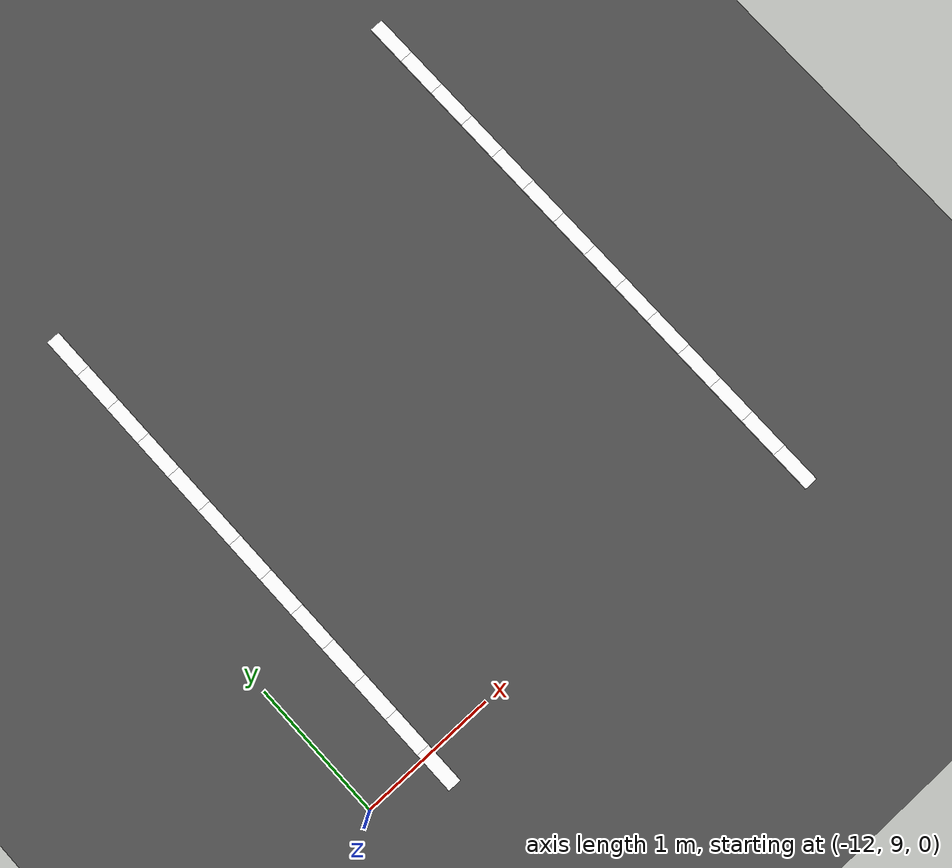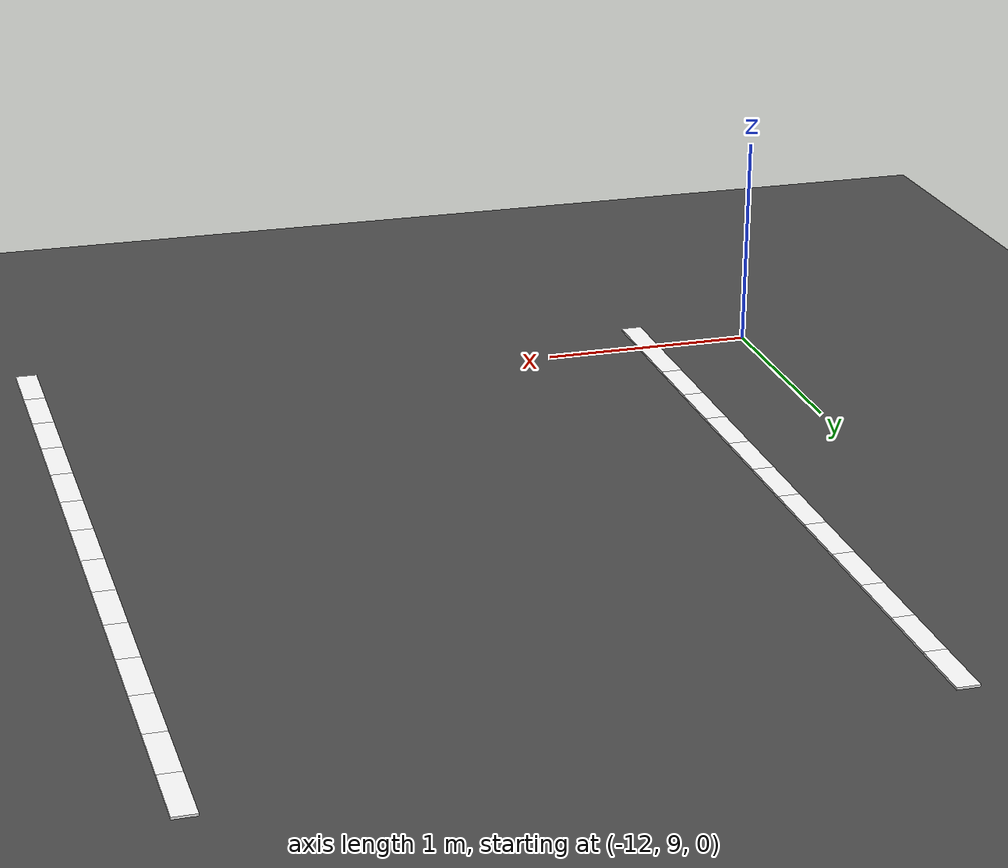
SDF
<sdf version="1.8">
 <world name="igvc_autonav">
  <model name="ground_plane">
   <static>true</static>
   <link name="link">
    <collision name="collision">
     <geometry><plane><normal>0 0 1</normal><size>60 60</size></plane></geometry>
     <surface><friction><ode><mu>0.8</mu><mu2>0.8</mu2></ode></friction></surface>
    </collision>
    <visual name="visual">
     <geometry><plane><normal>0 0 1</normal><size>60 60</size></plane></geometry>
     <material>
      <ambient>0.25 0.25 0.25 1</ambient>
      <diffuse>0.3 0.3 0.3 1</diffuse>
      <specular>0.1 0.1 0.1 1</specular>
     </material>
    </visual>
   </link>
  </model>
  <model name="lane_inner_151">
   <static>true</static>
   <pose>-8.5000 12.6500 0.01 0 0 -1.5708</pose>
   <link name="link">
    <visual name="visual">
     <geometry><box><size>0.3 0.1 0.01</size></box></geometry>
     <material><ambient>1 1 1 1</ambient><diffuse>1 1 1 1</diffuse><emissive>1 1 1 1</emissive></material>
    </visual>
   </link>
  </model>
  <model name="lane_inner_152">
   <static>true</static>
   <pose>-8.5000 12.3500 0.01 0 0 -1.5708</pose>
   <link name="link">
    <visual name="visual">
     <geometry><box><size>0.3 0.1 0.01</size></box></geometry>
     <material><ambient>1 1 1 1</ambient><diffuse>1 1 1 1</diffuse><emissive>1 1 1 1</emissive></material>
    </visual>
   </link>
  </model>
  <model name="lane_inner_153">
   <static>true</static>
   <pose>-8.5000 12.0500 0.01 0 0 -1.5708</pose>
   <link name="link">
    <visual name="visual">
     <geometry><box><size>0.3 0.1 0.01</size></box></geometry>
     <material><ambient>1 1 1 1</ambient><diffuse>1 1 1 1</diffuse><emissive>1 1 1 1</emissive></material>
    </visual>
   </link>
  </model>
  <model name="lane_inner_154">
   <static>true</static>
   <pose>-8.5000 11.7500 0.01 0 0 -1.5708</pose>
   <link name="link">
    <visual name="visual">
     <geometry><box><size>0.3 0.1 0.01</size></box></geometry>
     <material><ambient>1 1 1 1</ambient><diffuse>1 1 1 1</diffuse><emissive>1 1 1 1</emissive></material>
    </visual>
   </link>
  </model>
  <model name="lane_inner_155">
   <static>true</static>
   <pose>-8.5000 11.4500 0.01 0 0 -1.5708</pose>
   <link name="link">
    <visual name="visual">
     <geometry><box><size>0.3 0.1 0.01</size></box></geometry>
     <material><ambient>1 1 1 1</ambient><diffuse>1 1 1 1</diffuse><emissive>1 1 1 1</emissive></material>
    </visual>
   </link>
  </model>
  <model name="lane_inner_156">
   <static>true</static>
   <pose>-8.5000 11.1500 0.01 0 0 -1.5708</pose>
   <link name="link">
    <visual name="visual">
     <geometry><box><size>0.3 0.1 0.01</size></box></geometry>
     <material><ambient>1 1 1 1</ambient><diffuse>1 1 1 1</diffuse><emissive>1 1 1 1</emissive></material>
    </visual>
   </link>
  </model>
  <model name="lane_inner_157">
   <static>true</static>
   <pose>-8.5000 10.8500 0.01 0 0 -1.5708</pose>
   <link name="link">
    <visual name="visual">
     <geometry><box><size>0.3 0.1 0.01</size></box></geometry>
     <material><ambient>1 1 1 1</ambient><diffuse>1 1 1 1</diffuse><emissive>1 1 1 1</emissive></material>
    </visual>
   </link>
  </model>
  <model name="lane_inner_158">
   <static>true</static>
   <pose>-8.5000 10.5500 0.01 0 0 -1.5708</pose>
   <link name="link">
    <visual name="visual">
     <geometry><box><size>0.3 0.1 0.01</size></box></geometry>
     <material><ambient>1 1 1 1</ambient><diffuse>1 1 1 1</diffuse><emissive>1 1 1 1</emissive></material>
    </visual>
   </link>
  </model>
  <model name="lane_inner_159">
   <static>true</static>
   <pose>-8.5000 10.2500 0.01 0 0 -1.5708</pose>
   <link name="link">
    <visual name="visual">
     <geometry><box><size>0.3 0.1 0.01</size></box></geometry>
     <material><ambient>1 1 1 1</ambient><diffuse>1 1 1 1</diffuse><emissive>1 1 1 1</emissive></material>
    </visual>
   </link>
  </model>
  <model name="lane_inner_160">
   <static>true</static>
   <pose>-8.5000 9.9500 0.01 0 0 -1.5708</pose>
   <link name="link">
    <visual name="visual">
     <geometry><box><size>0.3 0.1 0.01</size></box></geometry>
     <material><ambient>1 1 1 1</ambient><diffuse>1 1 1 1</diffuse><emissive>1 1 1 1</emissive></material>
    </visual>
   </link>
  </model>
  <model name="lane_inner_161">
   <static>true</static>
   <pose>-8.5000 9.6500 0.01 0 0 -1.5708</pose>
   <link name="link">
    <visual name="visual">
     <geometry><box><size>0.3 0.1 0.01</size></box></geometry>
     <material><ambient>1 1 1 1</ambient><diffuse>1 1 1 1</diffuse><emissive>1 1 1 1</emissive></material>
    </visual>
   </link>
  </model>
  <model name="lane_inner_162">
   <static>true</static>
   <pose>-8.5000 9.3500 0.01 0 0 -1.5708</pose>
   <link name="link">
    <visual name="visual">
     <geometry><box><size>0.3 0.1 0.01</size></box></geometry>
     <material><ambient>1 1 1 1</ambient><diffuse>1 1 1 1</diffuse><emissive>1 1 1 1</emissive></material>
    </visual>
   </link>
  </model>
  <model name="lane_inner_163">
   <static>true</static>
   <pose>-8.5000 9.0500 0.01 0 0 -1.5708</pose>
   <link name="link">
    <visual name="visual">
     <geometry><box><size>0.3 0.1 0.01</size></box></geometry>
     <material><ambient>1 1 1 1</ambient><diffuse>1 1 1 1</diffuse><emissive>1 1 1 1</emissive></material>
    </visual>
   </link>
  </model>
  <model name="lane_inner_164">
   <static>true</static>
   <pose>-8.5000 8.7500 0.01 0 0 -1.5708</pose>
   <link name="link">
    <visual name="visual">
     <geometry><box><size>0.3 0.1 0.01</size></box></geometry>
     <material><ambient>1 1 1 1</ambient><diffuse>1 1 1 1</diffuse><emissive>1 1 1 1</emissive></material>
    </visual>
   </link>
  </model>
  <model name="lane_outer_184">
   <static>true</static>
   <pose>-11.5000 12.5000 0.01 0 0 -1.5708</pose>
   <link name="link">
    <visual name="visual">
     <geometry><box><size>0.3 0.1 0.01</size></box></geometry>
     <material><ambient>1 1 1 1</ambient><diffuse>1 1 1 1</diffuse><emissive>1 1 1 1</emissive></material>
    </visual>
   </link>
  </model>
  <model name="lane_outer_185">
   <static>true</static>
   <pose>-11.5000 12.2000 0.01 0 0 -1.5708</pose>
   <link name="link">
    <visual name="visual">
     <geometry><box><size>0.3 0.1 0.01</size></box></geometry>
     <material><ambient>1 1 1 1</ambient><diffuse>1 1 1 1</diffuse><emissive>1 1 1 1</emissive></material>
    </visual>
   </link>
  </model>
  <model name="lane_outer_186">
   <static>true</static>
   <pose>-11.5000 11.9000 0.01 0 0 -1.5708</pose>
   <link name="link">
    <visual name="visual">
     <geometry><box><size>0.3 0.1 0.01</size></box></geometry>
     <material><ambient>1 1 1 1</ambient><diffuse>1 1 1 1</diffuse><emissive>1 1 1 1</emissive></material>
    </visual>
   </link>
  </model>
  <model name="lane_outer_187">
   <static>true</static>
   <pose>-11.5000 11.6000 0.01 0 0 -1.5708</pose>
   <link name="link">
    <visual name="visual">
     <geometry><box><size>0.3 0.1 0.01</size></box></geometry>
     <material><ambient>1 1 1 1</ambient><diffuse>1 1 1 1</diffuse><emissive>1 1 1 1</emissive></material>
    </visual>
   </link>
  </model>
  <model name="lane_outer_188">
   <static>true</static>
   <pose>-11.5000 11.3000 0.01 0 0 -1.5708</pose>
   <link name="link">
    <visual name="visual">
     <geometry><box><size>0.3 0.1 0.01</size></box></geometry>
     <material><ambient>1 1 1 1</ambient><diffuse>1 1 1 1</diffuse><emissive>1 1 1 1</emissive></material>
    </visual>
   </link>
  </model>
  <model name="lane_outer_189">
   <static>true</static>
   <pose>-11.5000 11.0000 0.01 0 0 -1.5708</pose>
   <link name="link">
    <visual name="visual">
     <geometry><box><size>0.3 0.1 0.01</size></box></geometry>
     <material><ambient>1 1 1 1</ambient><diffuse>1 1 1 1</diffuse><emissive>1 1 1 1</emissive></material>
    </visual>
   </link>
  </model>
  <model name="lane_outer_190">
   <static>true</static>
   <pose>-11.5000 10.7000 0.01 0 0 -1.5708</pose>
   <link name="link">
    <visual name="visual">
     <geometry><box><size>0.3 0.1 0.01</size></box></geometry>
     <material><ambient>1 1 1 1</ambient><diffuse>1 1 1 1</diffuse><emissive>1 1 1 1</emissive></material>
    </visual>
   </link>
  </model>
  <model name="lane_outer_191">
   <static>true</static>
   <pose>-11.5000 10.4000 0.01 0 0 -1.5708</pose>
   <link name="link">
    <visual name="visual">
     <geometry><box><size>0.3 0.1 0.01</size></box></geometry>
     <material><ambient>1 1 1 1</ambient><diffuse>1 1 1 1</diffuse><emissive>1 1 1 1</emissive></material>
    </visual>
   </link>
  </model>
  <model name="lane_outer_192">
   <static>true</static>
   <pose>-11.5000 10.1000 0.01 0 0 -1.5708</pose>
   <link name="link">
    <visual name="visual">
     <geometry><box><size>0.3 0.1 0.01</size></box></geometry>
     <material><ambient>1 1 1 1</ambient><diffuse>1 1 1 1</diffuse><emissive>1 1 1 1</emissive></material>
    </visual>
   </link>
  </model>
  <model name="lane_outer_193">
   <static>true</static>
   <pose>-11.5000 9.8000 0.01 0 0 -1.5708</pose>
   <link name="link">
    <visual name="visual">
     <geometry><box><size>0.3 0.1 0.01</size></box></geometry>
     <material><ambient>1 1 1 1</ambient><diffuse>1 1 1 1</diffuse><emissive>1 1 1 1</emissive></material>
    </visual>
   </link>
  </model>
  <model name="lane_outer_194">
   <static>true</static>
   <pose>-11.5000 9.5000 0.01 0 0 -1.5708</pose>
   <link name="link">
    <visual name="visual">
     <geometry><box><size>0.3 0.1 0.01</size></box></geometry>
     <material><ambient>1 1 1 1</ambient><diffuse>1 1 1 1</diffuse><emissive>1 1 1 1</emissive></material>
    </visual>
   </link>
  </model>
  <model name="lane_outer_195">
   <static>true</static>
   <pose>-11.5000 9.2000 0.01 0 0 -1.5708</pose>
   <link name="link">
    <visual name="visual">
     <geometry><box><size>0.3 0.1 0.01</size></box></geometry>
     <material><ambient>1 1 1 1</ambient><diffuse>1 1 1 1</diffuse><emissive>1 1 1 1</emissive></material>
    </visual>
   </link>
  </model>
  <model name="lane_outer_196">
   <static>true</static>
   <pose>-11.5000 8.9000 0.01 0 0 -1.5708</pose>
   <link name="link">
    <visual name="visual">
     <geometry><box><size>0.3 0.1 0.01</size></box></geometry>
     <material><ambient>1 1 1 1</ambient><diffuse>1 1 1 1</diffuse><emissive>1 1 1 1</emissive></material>
    </visual>
   </link>
  </model>
 </world>
</sdf>
